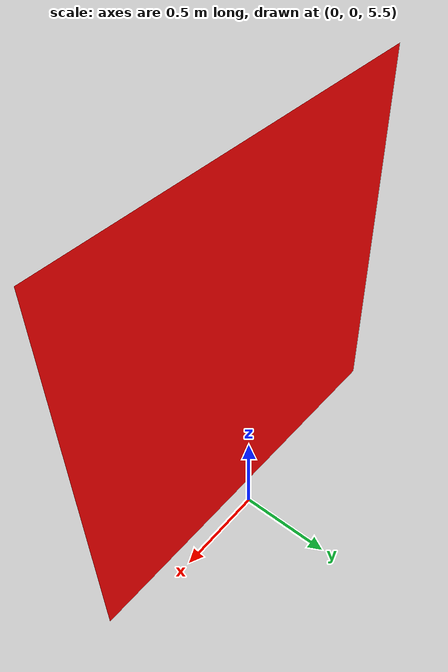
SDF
<?xml version="1.0" ?>
<sdf version="1.5">
  <model name="screen">
          <pose>0.0 -0.0 0.5 0.0 0.0 0.0</pose>
          <static>true</static>

          <link name="link">
            <visual name="screen_visual">
              <geometry>
                <mesh>
                  <uri>package://simulator/world/meshes/screen.dae</uri>
                  <scale>1 1 1</scale>
                </mesh>
              </geometry>
                <material>
                    <ambient>1.0 0.0 0.0 1.0</ambient>
                    <diffuse>1.0 0.0 0.0 1.0</diffuse>
                    <specular>1.0 1.0 1.0 1.0</specular>
                    <emissive>1.0 0.0 0.0 1.0</emissive>
                </material>
            </visual>
          </link>
          <plugin
            filename="ColorControl"
            name="ignition::gazebo::ColorControl">
          </plugin>
  </model>
</sdf>
